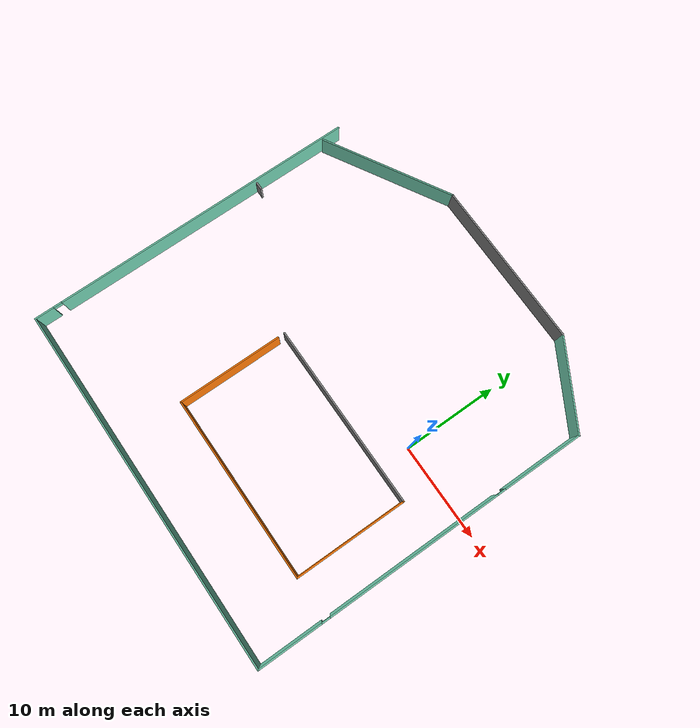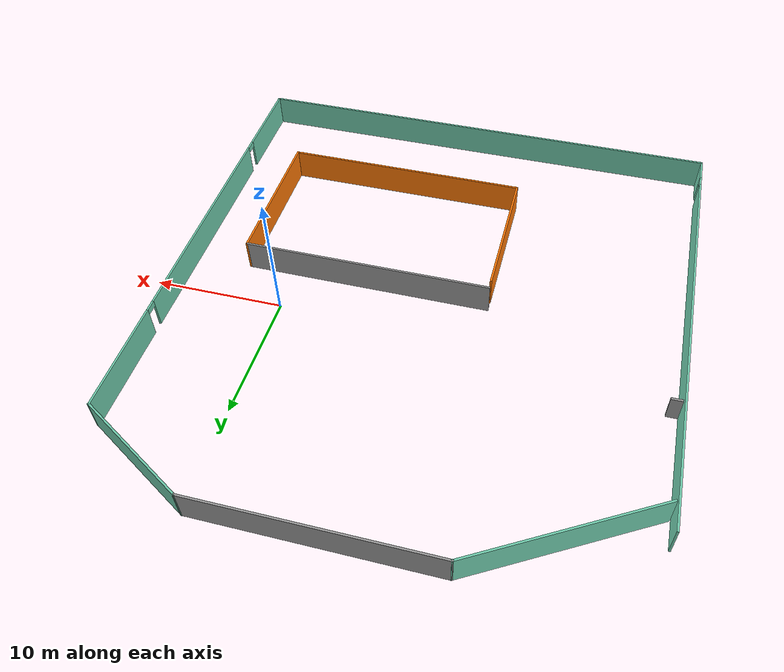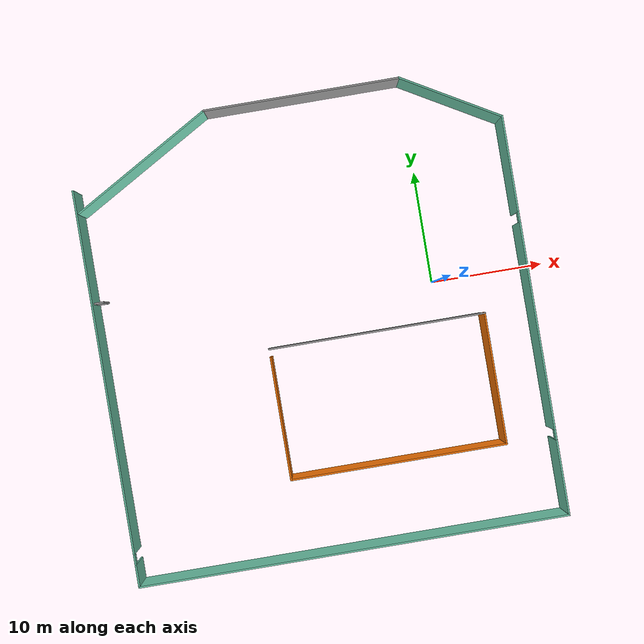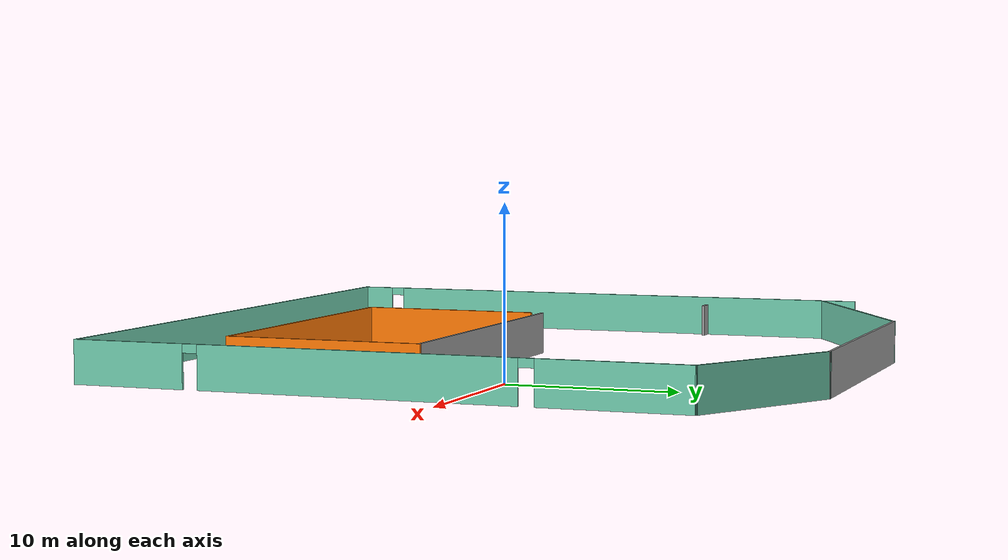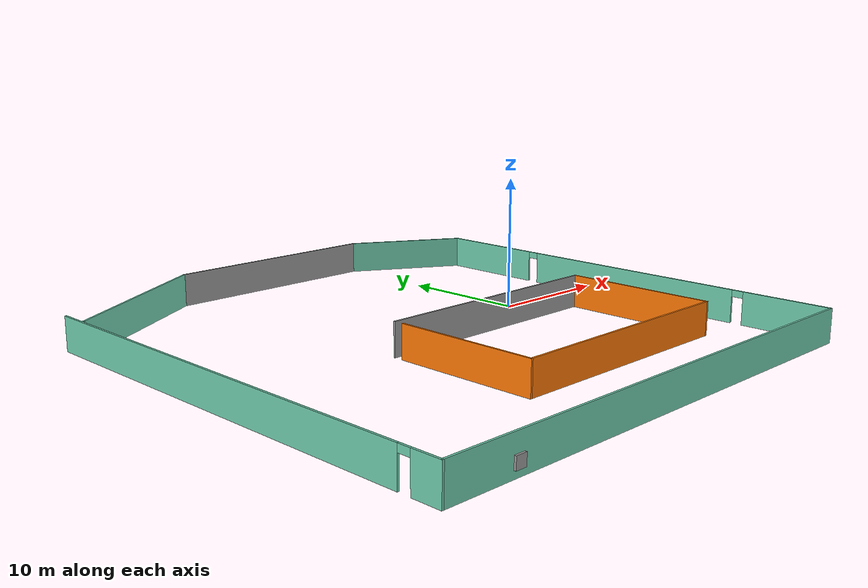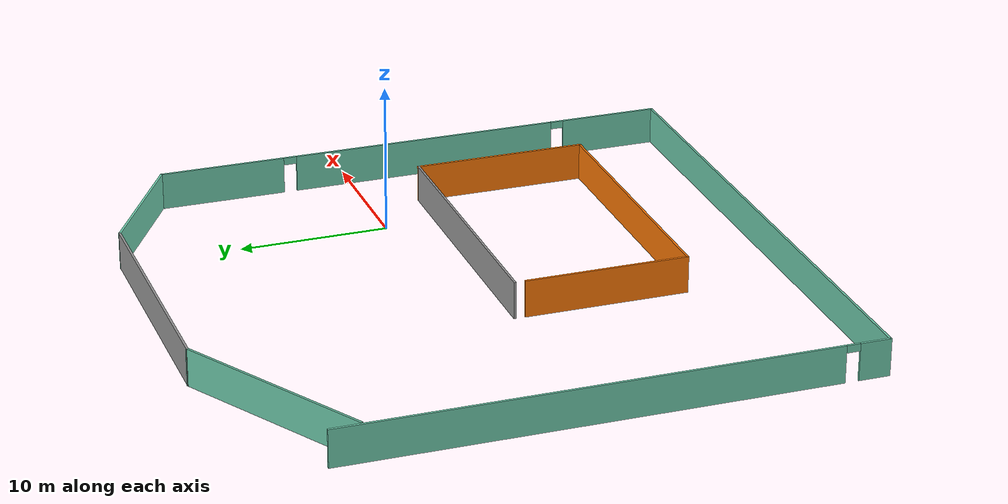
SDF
<?xml version='1.0'?>
<sdf version='1.6'>
  <model name='Untitled'>
    <pose frame=''>-10.954 -2.02916 0 0 -0 0</pose>
    <link name='Door_1'>
      <collision name='Door_1_Collision'>
        <geometry>
          <box>
            <size>0.9 0.17 2</size>
          </box>
        </geometry>
        <pose frame=''>0 0 1 0 -0 0</pose>
      </collision>
      <visual name='Door_1_Visual'>
        <pose frame=''>0 0 1 0 -0 0</pose>
        <geometry>
          <box>
            <size>0.9 0.17 2</size>
          </box>
        </geometry>
        <material>
          <script>
            <uri>file://media/materials/scripts/gazebo.material</uri>
            <name>Gazebo/Grey</name>
          </script>
        </material>
      </visual>
      <pose frame=''>-18.581 5.03494 0 0 -0 0</pose>
    </link>
    <link name='Wall_0'>
      <pose frame=''>-19.0637 -2.53873 0 0 0 -1.5708</pose>
      <visual name='Wall_0_Visual_0'>
        <pose frame=''>-1.48028 0 1.25 0 -0 0</pose>
        <geometry>
          <box>
            <size>32.2894 0.15 2.5</size>
          </box>
        </geometry>
        <material>
          <script>
            <uri>file://media/materials/scripts/gazebo.material</uri>
            <name>Gazebo/Grey</name>
          </script>
          <ambient>0.435294 0.796078 0.67451 1</ambient>
        </material>
        <meta>
          <layer>0</layer>
        </meta>
      </visual>
      <collision name='Wall_0_Collision_0'>
        <geometry>
          <box>
            <size>32.2894 0.15 2.5</size>
          </box>
        </geometry>
        <pose frame=''>-1.48028 0 1.25 0 -0 0</pose>
      </collision>
      <visual name='Wall_0_Visual_1'>
        <pose frame=''>16.5947 0 1.25 0 -0 0</pose>
        <geometry>
          <box>
            <size>2.06056 0.15 2.5</size>
          </box>
        </geometry>
        <material>
          <script>
            <uri>file://media/materials/scripts/gazebo.material</uri>
            <name>Gazebo/Grey</name>
          </script>
          <ambient>0.435294 0.796078 0.67451 1</ambient>
        </material>
        <meta>
          <layer>0</layer>
        </meta>
      </visual>
      <collision name='Wall_0_Collision_1'>
        <geometry>
          <box>
            <size>2.06056 0.15 2.5</size>
          </box>
        </geometry>
        <pose frame=''>16.5947 0 1.25 0 -0 0</pose>
      </collision>
      <visual name='Wall_0_Visual_2'>
        <pose frame=''>15.1144 0 2.25 0 -0 0</pose>
        <geometry>
          <box>
            <size>0.9 0.15 0.5</size>
          </box>
        </geometry>
        <material>
          <script>
            <uri>file://media/materials/scripts/gazebo.material</uri>
            <name>Gazebo/Grey</name>
          </script>
          <ambient>0.435294 0.796078 0.67451 1</ambient>
        </material>
        <meta>
          <layer>0</layer>
        </meta>
      </visual>
      <collision name='Wall_0_Collision_2'>
        <geometry>
          <box>
            <size>0.9 0.15 0.5</size>
          </box>
        </geometry>
        <pose frame=''>15.1144 0 2.25 0 -0 0</pose>
      </collision>
    </link>
    <link name='Wall_1'>
      <collision name='Wall_1_Collision'>
        <geometry>
          <box>
            <size>38.25 0.15 2.5</size>
          </box>
        </geometry>
        <pose frame=''>0 0 1.25 0 -0 0</pose>
      </collision>
      <visual name='Wall_1_Visual'>
        <pose frame=''>0 0 1.25 0 -0 0</pose>
        <geometry>
          <box>
            <size>38.25 0.15 2.5</size>
          </box>
        </geometry>
        <material>
          <script>
            <uri>file://media/materials/scripts/gazebo.material</uri>
            <name>Gazebo/Grey</name>
          </script>
          <ambient>0.435294 0.796078 0.67451 1</ambient>
        </material>
        <meta>
          <layer>0</layer>
        </meta>
      </visual>
      <pose frame=''>-0.013726 -20.0887 0 0 -0 0</pose>
    </link>
    <link name='Wall_10'>
      <collision name='Wall_10_Collision'>
        <geometry>
          <box>
            <size>19.25 0.15 2.5</size>
          </box>
        </geometry>
        <pose frame=''>0 0 1.25 0 -0 0</pose>
      </collision>
      <visual name='Wall_10_Visual'>
        <pose frame=''>0 0 1.25 0 -0 0</pose>
        <geometry>
          <box>
            <size>19.25 0.15 2.5</size>
          </box>
        </geometry>
        <material>
          <script>
            <uri>file://media/materials/scripts/gazebo.material</uri>
            <name>Gazebo/Grey</name>
          </script>
          <ambient>1 1 1 1</ambient>
        </material>
        <meta>
          <layer>0</layer>
        </meta>
      </visual>
      <pose frame=''>5.12895 -1.45594 0 0 -0 3.14159</pose>
    </link>
    <link name='Wall_2'>
      <pose frame=''>19.0363 -2.41373 0 0 -0 1.5708</pose>
      <visual name='Wall_2_Visual_0'>
        <pose frame=''>-14.3865 0 1.25 0 -0 0</pose>
        <geometry>
          <box>
            <size>6.72691 0.15 2.5</size>
          </box>
        </geometry>
        <material>
          <script>
            <uri>file://media/materials/scripts/gazebo.material</uri>
            <name>Gazebo/Grey</name>
          </script>
          <ambient>0.435294 0.796078 0.67451 1</ambient>
        </material>
        <meta>
          <layer>0</layer>
        </meta>
      </visual>
      <collision name='Wall_2_Collision_0'>
        <geometry>
          <box>
            <size>6.72691 0.15 2.5</size>
          </box>
        </geometry>
        <pose frame=''>-14.3865 0 1.25 0 -0 0</pose>
      </collision>
      <visual name='Wall_2_Visual_1'>
        <pose frame=''>-0.918578 0 1.25 0 -0 0</pose>
        <geometry>
          <box>
            <size>18.409 0.15 2.5</size>
          </box>
        </geometry>
        <material>
          <script>
            <uri>file://media/materials/scripts/gazebo.material</uri>
            <name>Gazebo/Grey</name>
          </script>
          <ambient>0.435294 0.796078 0.67451 1</ambient>
        </material>
        <meta>
          <layer>0</layer>
        </meta>
      </visual>
      <collision name='Wall_2_Collision_1'>
        <geometry>
          <box>
            <size>18.409 0.15 2.5</size>
          </box>
        </geometry>
        <pose frame=''>-0.918578 0 1.25 0 -0 0</pose>
      </collision>
      <visual name='Wall_2_Visual_2'>
        <pose frame=''>13.468 0 1.25 0 -0 0</pose>
        <geometry>
          <box>
            <size>8.56406 0.15 2.5</size>
          </box>
        </geometry>
        <material>
          <script>
            <uri>file://media/materials/scripts/gazebo.material</uri>
            <name>Gazebo/Grey</name>
          </script>
          <ambient>0.435294 0.796078 0.67451 1</ambient>
        </material>
        <meta>
          <layer>0</layer>
        </meta>
      </visual>
      <collision name='Wall_2_Collision_2'>
        <geometry>
          <box>
            <size>8.56406 0.15 2.5</size>
          </box>
        </geometry>
        <pose frame=''>13.468 0 1.25 0 -0 0</pose>
      </collision>
      <visual name='Wall_2_Visual_3'>
        <pose frame=''>-10.5731 0 2.25 0 -0 0</pose>
        <geometry>
          <box>
            <size>0.9 0.15 0.5</size>
          </box>
        </geometry>
        <material>
          <script>
            <uri>file://media/materials/scripts/gazebo.material</uri>
            <name>Gazebo/Grey</name>
          </script>
          <ambient>0.435294 0.796078 0.67451 1</ambient>
        </material>
        <meta>
          <layer>0</layer>
        </meta>
      </visual>
      <collision name='Wall_2_Collision_3'>
        <geometry>
          <box>
            <size>0.9 0.15 0.5</size>
          </box>
        </geometry>
        <pose frame=''>-10.5731 0 2.25 0 -0 0</pose>
      </collision>
      <visual name='Wall_2_Visual_4'>
        <pose frame=''>8.73594 0 2.25 0 -0 0</pose>
        <geometry>
          <box>
            <size>0.9 0.15 0.5</size>
          </box>
        </geometry>
        <material>
          <script>
            <uri>file://media/materials/scripts/gazebo.material</uri>
            <name>Gazebo/Grey</name>
          </script>
          <ambient>0.435294 0.796078 0.67451 1</ambient>
        </material>
        <meta>
          <layer>0</layer>
        </meta>
      </visual>
      <collision name='Wall_2_Collision_4'>
        <geometry>
          <box>
            <size>0.9 0.15 0.5</size>
          </box>
        </geometry>
        <pose frame=''>8.73594 0 2.25 0 -0 0</pose>
      </collision>
    </link>
    <link name='Wall_3'>
      <collision name='Wall_3_Collision'>
        <geometry>
          <box>
            <size>9.75 0.15 2.5</size>
          </box>
        </geometry>
        <pose frame=''>0 0 1.25 0 -0 0</pose>
      </collision>
      <visual name='Wall_3_Visual'>
        <pose frame=''>0 0 1.25 0 -0 0</pose>
        <geometry>
          <box>
            <size>9.75 0.15 2.5</size>
          </box>
        </geometry>
        <material>
          <script>
            <uri>file://media/materials/scripts/gazebo.material</uri>
            <name>Gazebo/Grey</name>
          </script>
          <ambient>0.435294 0.796078 0.67451 1</ambient>
        </material>
        <meta>
          <layer>0</layer>
        </meta>
      </visual>
      <pose frame=''>14.8794 17.6613 0 0 -0 2.61799</pose>
    </link>
    <link name='Wall_4'>
      <collision name='Wall_4_Collision'>
        <geometry>
          <box>
            <size>17.5 0.15 2.5</size>
          </box>
        </geometry>
        <pose frame=''>0 0 1.25 0 -0 0</pose>
      </collision>
      <visual name='Wall_4_Visual'>
        <pose frame=''>0 0 1.25 0 -0 0</pose>
        <geometry>
          <box>
            <size>17.5 0.15 2.5</size>
          </box>
        </geometry>
        <material>
          <script>
            <uri>file://media/materials/scripts/gazebo.material</uri>
            <name>Gazebo/Grey</name>
          </script>
          <ambient>1 1 1 1</ambient>
        </material>
        <meta>
          <layer>0</layer>
        </meta>
      </visual>
      <pose frame=''>2.04743 20.0613 0 0 -0 3.14159</pose>
    </link>
    <link name='Wall_5'>
      <collision name='Wall_5_Collision'>
        <geometry>
          <box>
            <size>14.25 0.15 2.5</size>
          </box>
        </geometry>
        <pose frame=''>0 0 1.25 0 -0 0</pose>
      </collision>
      <visual name='Wall_5_Visual'>
        <pose frame=''>0 0 1.25 0 -0 0</pose>
        <geometry>
          <box>
            <size>14.25 0.15 2.5</size>
          </box>
        </geometry>
        <material>
          <script>
            <uri>file://media/materials/scripts/gazebo.material</uri>
            <name>Gazebo/Grey</name>
          </script>
          <ambient>0.435294 0.796078 0.67451 1</ambient>
        </material>
        <meta>
          <layer>0</layer>
        </meta>
      </visual>
      <pose frame=''>-12.733 16.5363 0 0 0 -2.61799</pose>
    </link>
    <link name='Wall_7'>
      <collision name='Wall_7_Collision'>
        <geometry>
          <box>
            <size>11 0.15 2.5</size>
          </box>
        </geometry>
        <pose frame=''>0 0 1.25 0 -0 0</pose>
      </collision>
      <visual name='Wall_7_Visual'>
        <pose frame=''>0 0 1.25 0 -0 0</pose>
        <geometry>
          <box>
            <size>11 0.15 2.5</size>
          </box>
        </geometry>
        <material>
          <script>
            <uri>file://media/materials/scripts/gazebo.material</uri>
            <name>Gazebo/Grey</name>
          </script>
          <ambient>0.996078 0.47451 0.0196078 1</ambient>
        </material>
        <meta>
          <layer>0</layer>
        </meta>
      </visual>
      <pose frame=''>-4.42105 -7.63094 0 0 0 -1.5708</pose>
    </link>
    <link name='Wall_8'>
      <collision name='Wall_8_Collision'>
        <geometry>
          <box>
            <size>19.25 0.15 2.5</size>
          </box>
        </geometry>
        <pose frame=''>0 0 1.25 0 -0 0</pose>
      </collision>
      <visual name='Wall_8_Visual'>
        <pose frame=''>0 0 1.25 0 -0 0</pose>
        <geometry>
          <box>
            <size>19.25 0.15 2.5</size>
          </box>
        </geometry>
        <material>
          <script>
            <uri>file://media/materials/scripts/gazebo.material</uri>
            <name>Gazebo/Grey</name>
          </script>
          <ambient>0.996078 0.47451 0.0196078 1</ambient>
        </material>
        <meta>
          <layer>0</layer>
        </meta>
      </visual>
      <pose frame=''>5.12895 -13.0559 0 0 -0 0</pose>
    </link>
    <link name='Wall_9'>
      <collision name='Wall_9_Collision'>
        <geometry>
          <box>
            <size>11.75 0.15 2.5</size>
          </box>
        </geometry>
        <pose frame=''>0 0 1.25 0 -0 0</pose>
      </collision>
      <visual name='Wall_9_Visual'>
        <pose frame=''>0 0 1.25 0 -0 0</pose>
        <geometry>
          <box>
            <size>11.75 0.15 2.5</size>
          </box>
        </geometry>
        <material>
          <script>
            <uri>file://media/materials/scripts/gazebo.material</uri>
            <name>Gazebo/Grey</name>
          </script>
          <ambient>0.996078 0.47451 0.0196078 1</ambient>
        </material>
        <meta>
          <layer>0</layer>
        </meta>
      </visual>
      <pose frame=''>14.679 -7.25594 0 0 -0 1.5708</pose>
    </link>
    <link name='Window_0'>
      <collision name='Window_0_Collision'>
        <geometry>
          <box>
            <size>0.8 0.17 0.8</size>
          </box>
        </geometry>
        <pose frame=''>0 0 0.4 0 -0 0</pose>
      </collision>
      <visual name='Window_0_Visual'>
        <pose frame=''>0 0 0.4 0 -0 0</pose>
        <geometry>
          <box>
            <size>0.8 0.17 0.8</size>
          </box>
        </geometry>
        <material>
          <script>
            <uri>file://media/materials/scripts/gazebo.material</uri>
            <name>Gazebo/Grey</name>
          </script>
        </material>
      </visual>
      <pose frame=''>-13.7537 -20.2277 0.5 0 -0 0</pose>
    </link>
    <static>1</static>
  </model>
</sdf>
